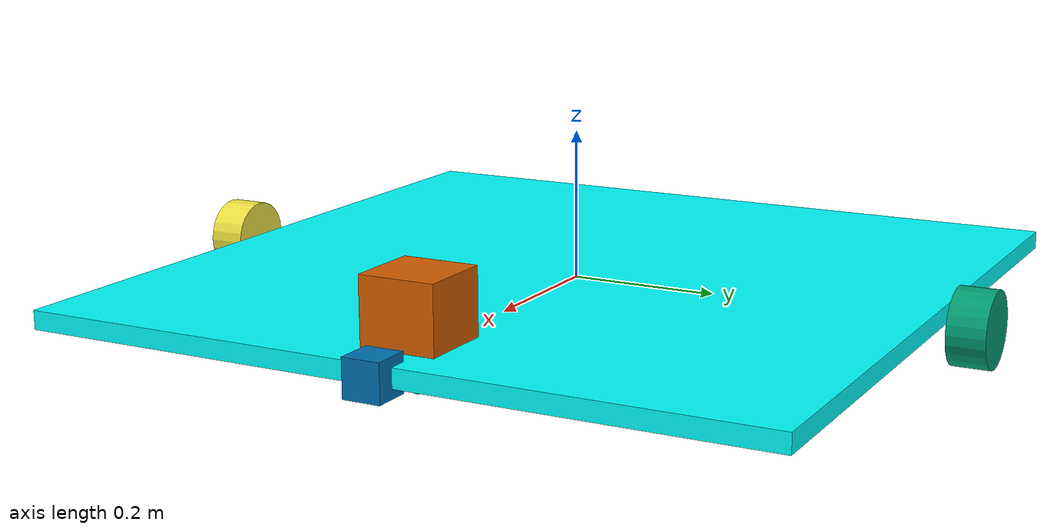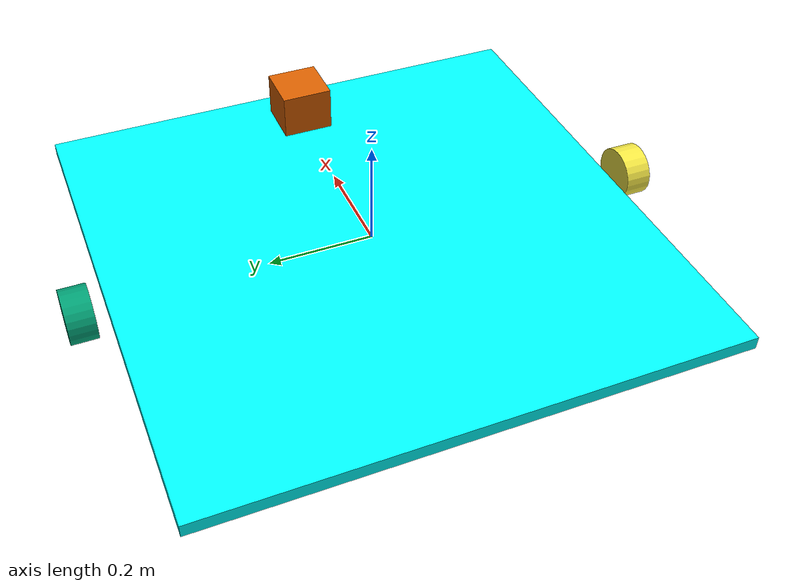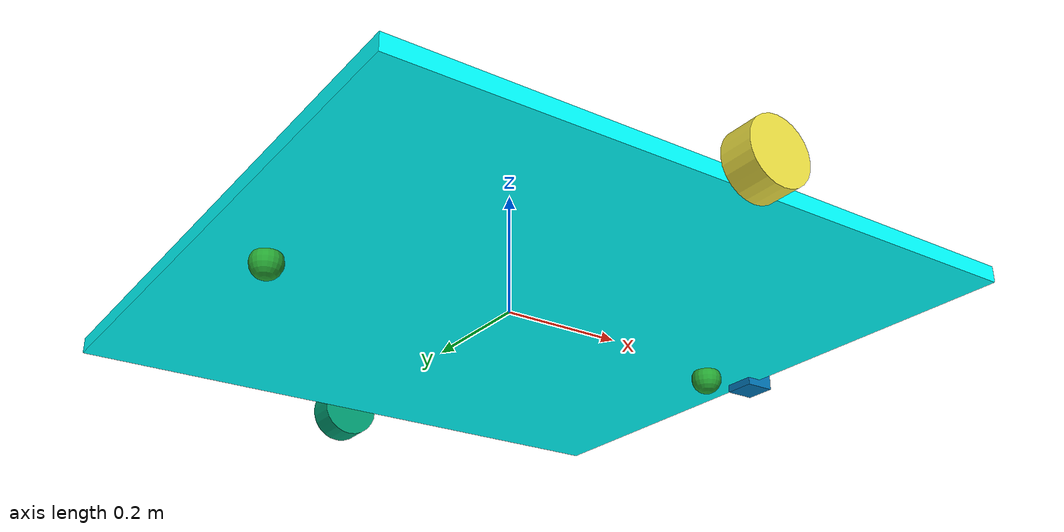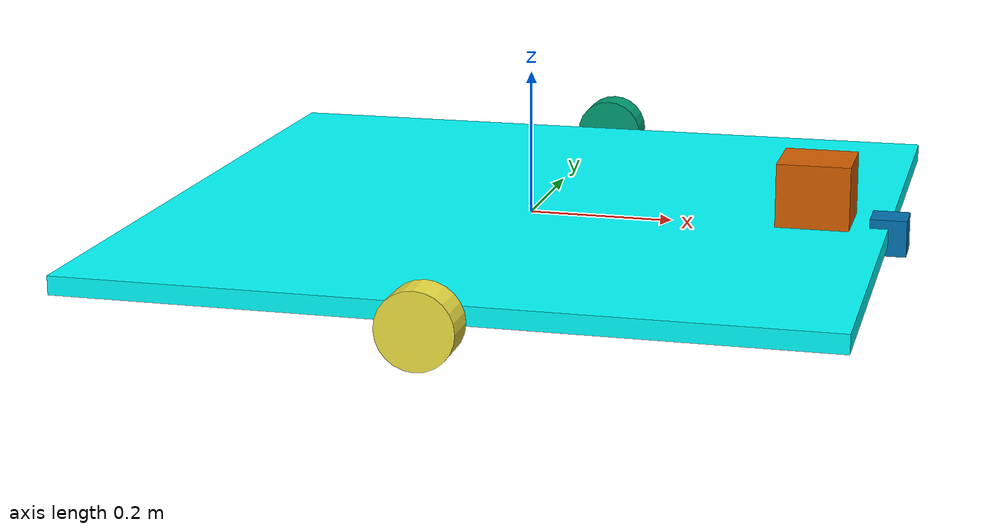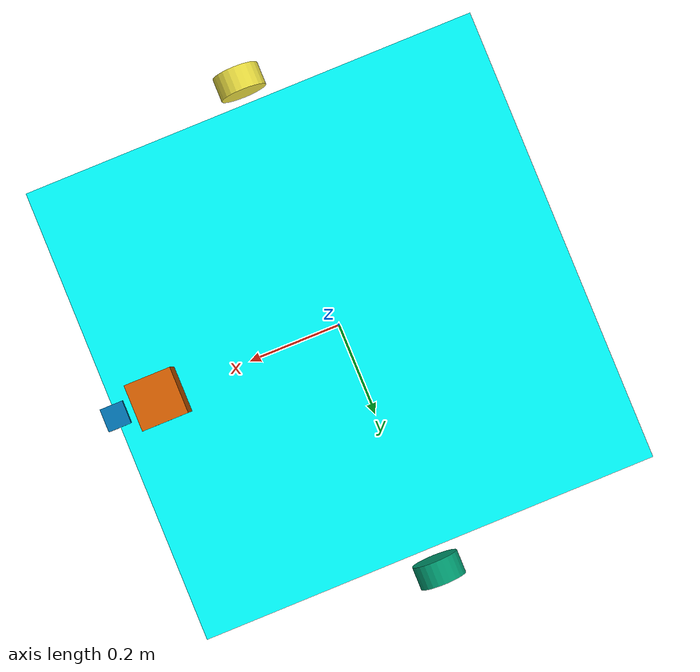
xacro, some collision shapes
<?xml version='1.0'?>

<robot name="my_robot" xmlns:xacro="http://www.ros.org/wiki/xacro">

<xacro:include filename="$(find my_robot)/urdf/my_robot.gazebo" />

<gazebo reference="chassis">
    <material>Gazebo/Green</material>
</gazebo>

  <link name="robot_footprint"></link>

  <joint name="robot_footprint_joint" type="fixed">
    <origin xyz="0 0 0" rpy="0 0 0" />
    <parent link="robot_footprint"/>
    <child link="chassis" />
  </joint>

  <link name='chassis'>
    <pose>0 0 0.05 0 0 0</pose>

    <inertial>
      <mass value="15.0"/>
      <origin xyz="0.0 0 0" rpy=" 0 0 0"/>
      <inertia
          ixx="0.1" ixy="0" ixz="0"
          iyy="0.1" iyz="0"
          izz="0.1"
      />
    </inertial>

    <collision name='collision'>
      <origin xyz="0 0 0" rpy=" 0 0 0"/>
      <geometry>
        <box size="1 1 .025"/>
      </geometry>
    </collision>

    <visual name='chassis_visual'>
      <origin xyz="0 0 0" rpy=" 0 0 0"/>
      <geometry>
        <box size="1 1 .025"/>
      </geometry>
	<material name="Green">
         <color rgba="0 1.0 1.0 1"/>
        </material>
    </visual>

    <collision name='back_caster_collision'>
      <origin xyz="-0.4 0 -0.025" rpy=" 0 0 0"/>
      <geometry>
        <sphere radius="0.02499"/>
      </geometry>
    </collision>

    <visual name='back_caster_visual'>
      <origin xyz="-0.4 0 -0.025" rpy=" 0 0 0"/>
      <geometry>
        <sphere radius="0.025"/>
      </geometry>
    </visual>

    <collision name='front_caster_collision'>
      <origin xyz="0.4 0 -0.025" rpy=" 0 0 0"/>
      <geometry>
        <sphere radius="0.02499"/>
      </geometry>
    </collision>

    <visual name='front_caster_visual'>
      <origin xyz="0.4 0 -0.025" rpy=" 0 0 0"/>
      <geometry>
        <sphere radius="0.025"/>
      </geometry>
    </visual>

  </link>

  <link name="left_wheel">
     <collision>
	<geometry>
		<cylinder radius="0.05" length ="0.05"/>
	</geometry>
	<origin xyz =" 0 0 0" rpy = " 0 1.5707 1.5707" />
     </collision>

<visual name='Lsideweheel_visual'>
      <origin xyz="0 0 0" rpy=" 0 1.5707 1.5707"/>
      <geometry>
        <cylinder radius="0.05" length ="0.05"/>
      </geometry>
    </visual>

<inertial>
      <mass value="5.0"/>
      <origin xyz="0.0 0 0" rpy=" 0 1.5707 1.5707"/>
      <inertia
          ixx="0.1" ixy="0" ixz="0"
          iyy="0.1" iyz="0"
          izz="0.1"
      />
    </inertial>

</link>

  <link name="right_wheel">
     <collision>
	<geometry>
		<cylinder radius="0.05" length ="0.05"/>
	</geometry>
	<origin xyz =" 0 0 0" rpy = " 0 1.5707 1.5707" />
     </collision>

<visual name='Lsideweheel_visual'>
      <origin xyz="0 0 0" rpy=" 0 1.5707 1.5707"/>
      <geometry>
        <cylinder radius="0.05" length ="0.05"/>
      </geometry>
    </visual>

<inertial>
      <mass value="5.0"/>
      <origin xyz="0.0 0 0" rpy=" 0 1.5707 1.5707"/>
      <inertia
          ixx="0.1" ixy="0" ixz="0"
          iyy="0.1" iyz="0"
          izz="0.1"
      />
    </inertial>

</link>

  <link name="camera">
     <collision>
	<geometry>
		<box size ="0.05 0.05 0.05"/>
	</geometry>
	<origin xyz =" 0 0 0" rpy = " 0 0 0" />
     </collision>

     <visual name='camera'>
    	 <geometry>
		<box size ="0.05 0.05 0.05"/>
    	 </geometry>
     <origin xyz =" 0 0 0" rpy = " 0 0 0" />
     </visual>

     <inertial>
      <mass value="0.5"/>
      <origin xyz="0.05 0.05 0.05" rpy=" 0 0 0"/>
      <inertia
          ixx="0.000001" ixy="0" ixz="0"
          iyy="0.000001" iyz="0"
          izz="0.000001"
      />
    </inertial>

</link>

  <link name="hokuyo">
     <collision>
	<geometry>
		<box size ="0.1 0.1 0.1"/>
	</geometry>
	<origin xyz =" 0 0 0" rpy = " 0 0 0" />
     </collision>

     <visual name='hokuyo'>
    	 <geometry>
		<mesh filename = "package://my_robot/meshes/hokuyo.dae"/>
    	 </geometry>
     <origin xyz =" 0 0 0" rpy = " 0 0 0" />
     </visual>

     <inertial>
      <mass value="1e-5"/>
      <origin xyz="0 0 0" rpy=" 0 0 0"/>
      <inertia
          ixx="0.000001" ixy="0" ixz="0"
          iyy="0.000001" iyz="0"
          izz="0.000001"
      />
    </inertial>

</link>

<joint type="continuous" name="left_wheel_hinge">
    <origin xyz="0 0.55 0" rpy="0 0 0"/>
    <child link="left_wheel"/>
    <parent link="chassis"/>
    <axis xyz="0 1 0" rpy="0 0 0"/>
    <limit effort="10000" velocity="1000"/>
    <dynamics damping="1.0" friction="1.0"/>
  </joint>

<joint type="continuous" name="right_wheel_hinge">
    <origin xyz="0 -0.55 0" rpy="0 0 0"/>
    <child link="right_wheel"/>
    <parent link="chassis"/>
    <axis xyz="0 1 0" rpy="0 0 0"/>
    <limit effort="10000" velocity="1000"/>
    <dynamics damping="1.0" friction="1.0"/>
  </joint>

<joint type="fixed" name="camera_joint">
    <origin xyz="0.5 0 0" rpy="0 0 0"/>
    <child link="camera"/>
    <parent link="chassis"/>
    <axis xyz="0 1 0" rpy="0 0 0"/>
    <limit effort="10000" velocity="1000"/>
    <dynamics damping="1.0" friction="1.0"/>
  </joint>

<joint type="fixed" name="hokuyo_joint">
    <origin xyz="0.4 0 0.05" rpy="0 0 0"/>
    <child link="hokuyo"/>
    <parent link="chassis"/>
    <axis xyz="0 1 0" rpy="0 0 0"/>
    <limit effort="10000" velocity="1000"/>
    <dynamics damping="1.0" friction="1.0"/>
  </joint>

 <link name="camera_link_optical">
  </link>

<joint name="camera_optical_joint" type="fixed">
    <origin xyz="0 0 0" rpy="-1.5707 0 -1.5707"/>
    <parent link="camera"/>
    <child link="camera_link_optical"/>
  </joint>

</robot>
